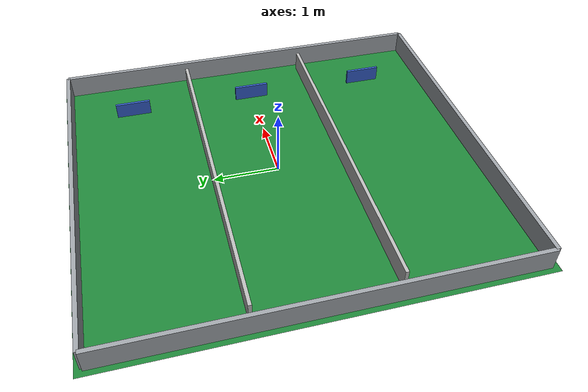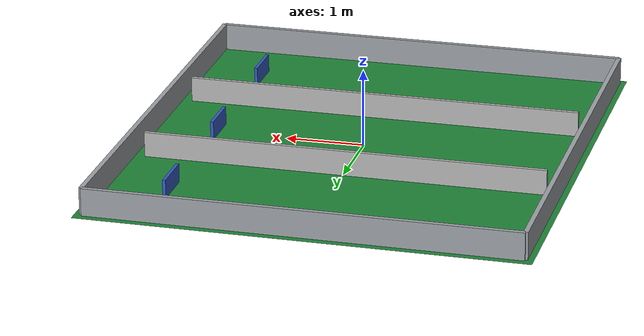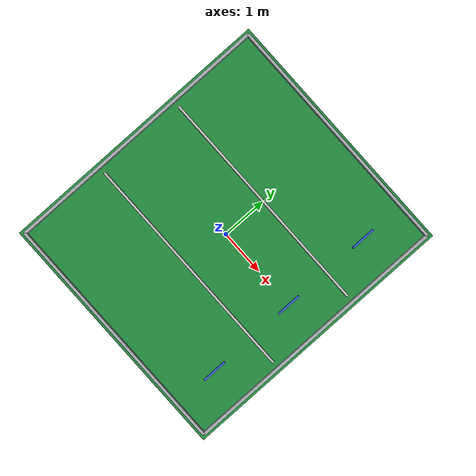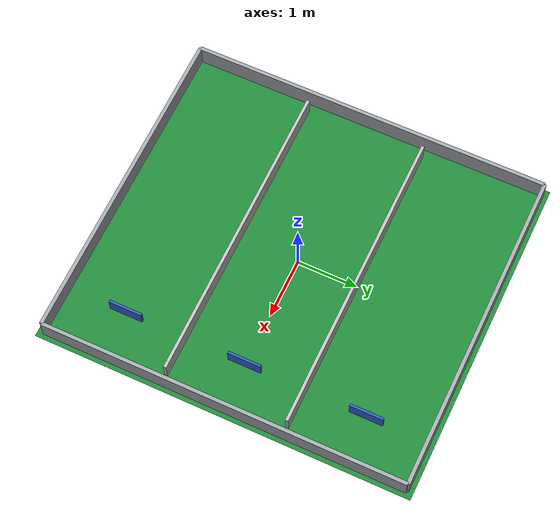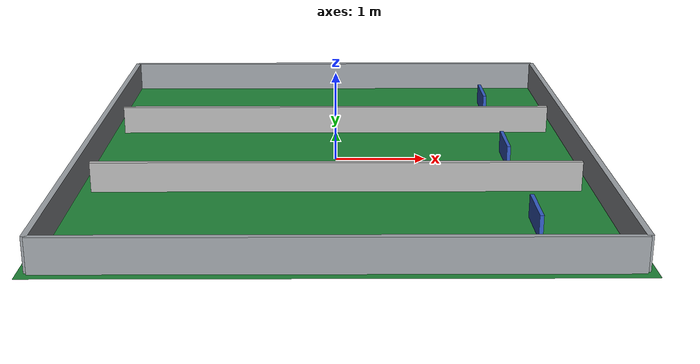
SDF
<?xml version="1.0"?>
<sdf version="1.8">
  <world name="footbot_world">
    <gravity>0 0 -9.81</gravity>
    <magnetic_field>0 0 0</magnetic_field>
    <atmosphere type="adiabatic"/>

    <plugin filename="ignition-gazebo-physics-system" name="ignition::gazebo::systems::Physics"/>
    <plugin filename="libfootbot_ball_drag_system.so" name="footbot_gazebo::BallDragSystem">
      <link_name>ball_link</link_name>
      <linear_damping>0.18</linear_damping>
      <angular_damping>0.0012</angular_damping>
      <max_force>0.30</max_force>
      <max_torque>0.015</max_torque>
      <stop_linear_speed>0.02</stop_linear_speed>
      <stop_angular_speed>0.35</stop_angular_speed>
    </plugin>
    <plugin filename="ignition-gazebo-user-commands-system" name="ignition::gazebo::systems::UserCommands"/>
    <plugin filename="ignition-gazebo-scene-broadcaster-system" name="ignition::gazebo::systems::SceneBroadcaster"/>
    <plugin filename="ignition-gazebo-sensors-system" name="ignition::gazebo::systems::Sensors">
      <render_engine>ogre2</render_engine>
    </plugin>

    <physics name="default_physics" type="ignored">
      <max_step_size>0.001</max_step_size>
      <real_time_factor>1.0</real_time_factor>
    </physics>

    <scene>
      <ambient>0.62 0.62 0.62 1.0</ambient>
      <background>0.76 0.80 0.84 1.0</background>
      <shadows>true</shadows>
    </scene>

    <light name="sun" type="directional">
      <cast_shadows>true</cast_shadows>
      <pose>0 0 5 0 0 0</pose>
      <diffuse>0.90 0.90 0.90 1</diffuse>
      <specular>0.20 0.20 0.20 1</specular>
      <attenuation>
        <range>1000</range>
        <constant>0.9</constant>
        <linear>0.01</linear>
        <quadratic>0.001</quadratic>
      </attenuation>
      <direction>-0.45 0.15 -0.9</direction>
    </light>

    <model name="multi_control_field">
      <static>true</static>
      <link name="field_link">
        <collision name="field_collision">
          <geometry>
            <plane>
              <normal>0 0 1</normal>
              <size>5.6 6.2</size>
            </plane>
          </geometry>
        </collision>
        <visual name="field_visual">
          <geometry>
            <plane>
              <normal>0 0 1</normal>
              <size>5.6 6.2</size>
            </plane>
          </geometry>
          <material>
            <ambient>0.12 0.42 0.18 1</ambient>
            <diffuse>0.12 0.52 0.22 1</diffuse>
            <specular>0.05 0.05 0.05 1</specular>
          </material>
        </visual>
      </link>
    </model>

    <model name="lane_walls">
      <static>true</static>
      <link name="north_boundary">
        <pose>0 3.0 0.175 0 0 0</pose>
        <collision name="collision">
          <geometry><box><size>5.4 0.06 0.35</size></box></geometry>
        </collision>
        <visual name="visual">
          <geometry><box><size>5.4 0.06 0.35</size></box></geometry>
          <material>
            <ambient>0.62 0.64 0.66 1</ambient>
            <diffuse>0.62 0.64 0.66 1</diffuse>
          </material>
        </visual>
      </link>
      <link name="south_boundary">
        <pose>0 -3.0 0.175 0 0 0</pose>
        <collision name="collision">
          <geometry><box><size>5.4 0.06 0.35</size></box></geometry>
        </collision>
        <visual name="visual">
          <geometry><box><size>5.4 0.06 0.35</size></box></geometry>
          <material>
            <ambient>0.62 0.64 0.66 1</ambient>
            <diffuse>0.62 0.64 0.66 1</diffuse>
          </material>
        </visual>
      </link>
      <link name="east_boundary">
        <pose>2.7 0 0.175 0 0 0</pose>
        <collision name="collision">
          <geometry><box><size>0.06 6.0 0.35</size></box></geometry>
        </collision>
        <visual name="visual">
          <geometry><box><size>0.06 6.0 0.35</size></box></geometry>
          <material>
            <ambient>0.62 0.64 0.66 1</ambient>
            <diffuse>0.62 0.64 0.66 1</diffuse>
          </material>
        </visual>
      </link>
      <link name="west_boundary">
        <pose>-2.7 0 0.175 0 0 0</pose>
        <collision name="collision">
          <geometry><box><size>0.06 6.0 0.35</size></box></geometry>
        </collision>
        <visual name="visual">
          <geometry><box><size>0.06 6.0 0.35</size></box></geometry>
          <material>
            <ambient>0.62 0.64 0.66 1</ambient>
            <diffuse>0.62 0.64 0.66 1</diffuse>
          </material>
        </visual>
      </link>
      <link name="upper_lane_divider">
        <pose>0 1.0 0.16 0 0 0</pose>
        <collision name="collision">
          <geometry><box><size>5.1 0.05 0.32</size></box></geometry>
        </collision>
        <visual name="visual">
          <geometry><box><size>5.1 0.05 0.32</size></box></geometry>
          <material>
            <ambient>0.72 0.72 0.72 1</ambient>
            <diffuse>0.72 0.72 0.72 1</diffuse>
          </material>
        </visual>
      </link>
      <link name="lower_lane_divider">
        <pose>0 -1.0 0.16 0 0 0</pose>
        <collision name="collision">
          <geometry><box><size>5.1 0.05 0.32</size></box></geometry>
        </collision>
        <visual name="visual">
          <geometry><box><size>5.1 0.05 0.32</size></box></geometry>
          <material>
            <ambient>0.72 0.72 0.72 1</ambient>
            <diffuse>0.72 0.72 0.72 1</diffuse>
          </material>
        </visual>
      </link>
    </model>

    <model name="lane_reference_markers">
      <static>true</static>
      <link name="center_lane_marker">
        <pose>1.9 0 0.12 0 0 0</pose>
        <visual name="visual">
          <geometry><box><size>0.04 0.55 0.24</size></box></geometry>
          <material>
            <ambient>0.20 0.36 0.78 1</ambient>
            <diffuse>0.20 0.36 0.78 1</diffuse>
          </material>
        </visual>
      </link>
      <link name="far_lane_marker">
        <pose>1.9 2.0 0.12 0 0 0</pose>
        <visual name="visual">
          <geometry><box><size>0.04 0.55 0.24</size></box></geometry>
          <material>
            <ambient>0.20 0.36 0.78 1</ambient>
            <diffuse>0.20 0.36 0.78 1</diffuse>
          </material>
        </visual>
      </link>
      <link name="behind_lane_marker">
        <pose>1.9 -2.0 0.12 0 0 0</pose>
        <visual name="visual">
          <geometry><box><size>0.04 0.55 0.24</size></box></geometry>
          <material>
            <ambient>0.20 0.36 0.78 1</ambient>
            <diffuse>0.20 0.36 0.78 1</diffuse>
          </material>
        </visual>
      </link>
    </model>
  </world>
</sdf>
